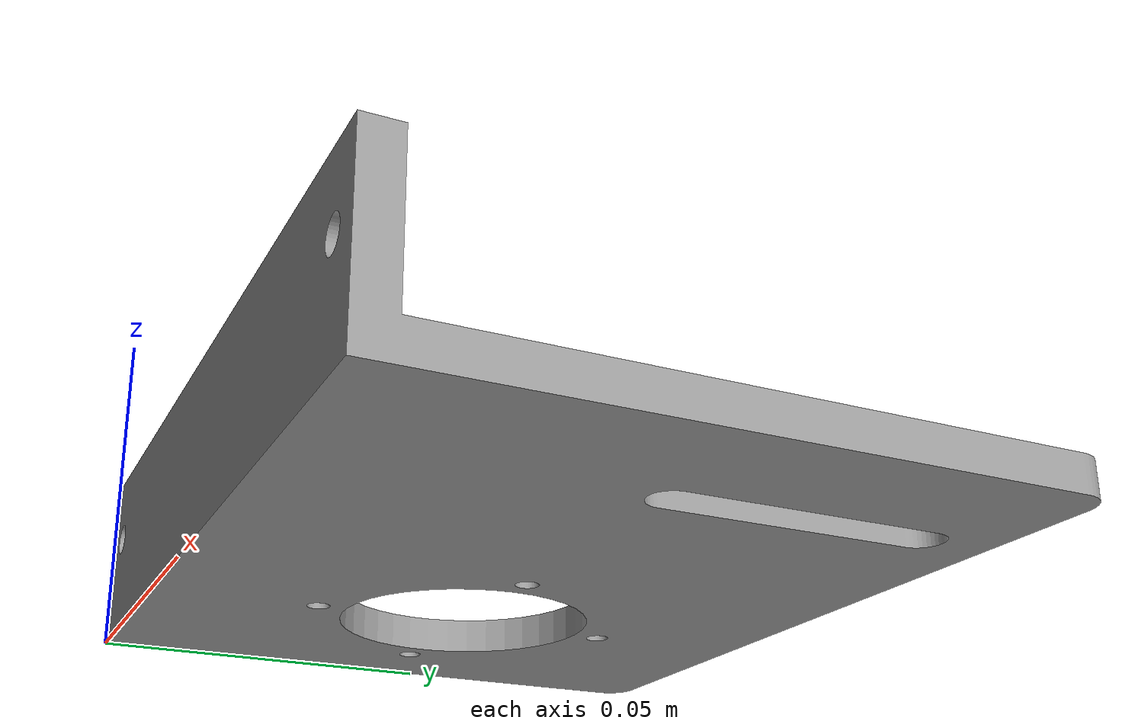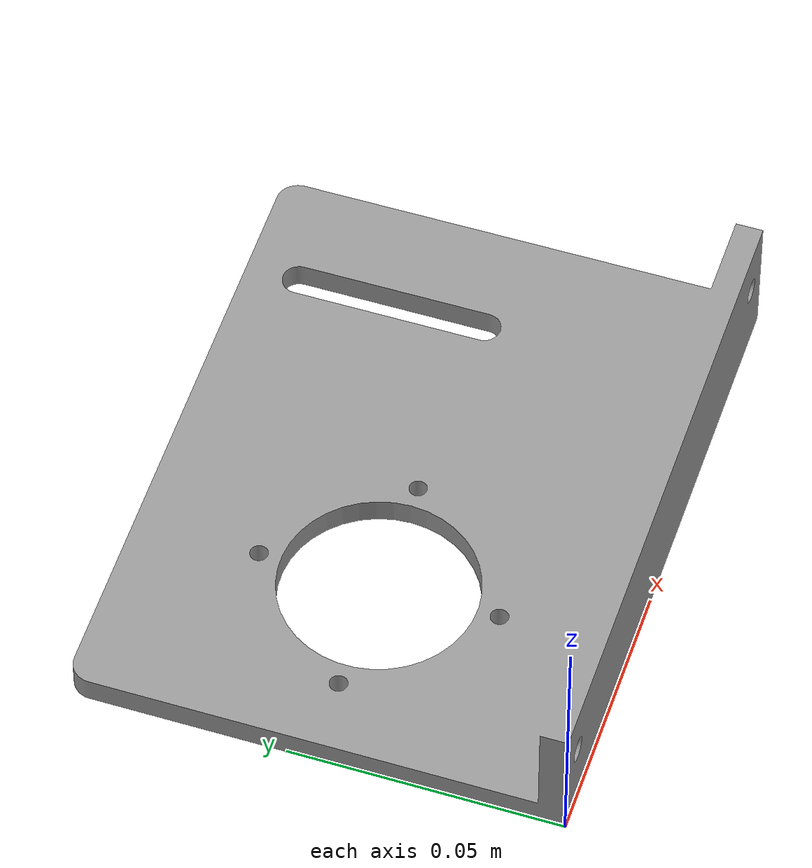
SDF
<?xml version='1.0'?>
<sdf version='1.6'>
  <model name='panel_bearing'>
    <link name='panel_bearing'>
      <pose frame=''>0 0 0 0 0 0</pose>
      <inertial>
        <pose frame=''> 0.059474 0.036572 0.004999 0 0 0</pose>
        <mass>0.449</mass>
        <inertia>
          <ixx>4.1260000e-3</ixx>
          <ixy>5.2940580e-5</ixy>
          <ixz>1.6538570e-5</ixz>
          <iyy>5.3410000e-3</iyy>
          <iyz>3.8250702e-4</iyz>
          <izz>9.1670000e-3</izz>
        </inertia>
      </inertial>
      <visual name='panel_bearing'>
        <pose frame=''>0 0 0 0 0 0</pose>
        <geometry>
          <mesh>
            <scale>0.001 0.001 0.001</scale>
            <uri>model://meshes/03-PANEL2.stl</uri>
          </mesh>
        </geometry>
        <material>
          <script>
            <uri>file://media/materials/scripts/gazebo.material</uri>
            <name>Gazebo/Grey</name>
          </script>
        </material>
      </visual>
      <collision name='panel_bearing'>
        <pose frame=''>0 0 0 0 0 0</pose>
        <geometry>
          <mesh>
            <scale>0.001 0.001 0.001</scale>
            <uri>model://meshes/03-PANEL2-collision.stl</uri>
          </mesh>
        </geometry>
        <surface>
          <friction>
            <ode>
              <mu>0.5</mu>
              <mu2>0.5</mu2>
              <fdir1>0 0 0</fdir1>
              <slip1>0.1</slip1>
              <slip2>0.1</slip2>
            </ode>
            <torsional>
              <coefficient>1</coefficient>
              <patch_radius>0</patch_radius>
              <surface_radius>0.9</surface_radius>
              <use_patch_radius>0</use_patch_radius>
              <ode>
                <slip>0</slip>
              </ode>
            </torsional>
          </friction>
          <bounce>
            <restitution_coefficient>0</restitution_coefficient>
            <threshold>1e+06</threshold>
          </bounce>
          <contact>
            <collide_without_contact>0</collide_without_contact>
            <collide_without_contact_bitmask>1</collide_without_contact_bitmask>
            <collide_bitmask>1</collide_bitmask>
            <ode>
              <soft_cfm>0.01</soft_cfm>
              <soft_erp>0.2</soft_erp>
              <kp>1e+4</kp>
              <kd>1</kd>
              <max_vel>0.01</max_vel>
              <min_depth>0</min_depth>
            </ode>
            <bullet>
              <split_impulse>1</split_impulse>
              <split_impulse_penetration_threshold>-0.01</split_impulse_penetration_threshold>
              <soft_cfm>0</soft_cfm>
              <soft_erp>0.1</soft_erp>
              <kp>1e+13</kp>
              <kd>1</kd>
            </bullet>
          </contact>
        </surface>
      </collision>
      </link>
  </model>
</sdf>
